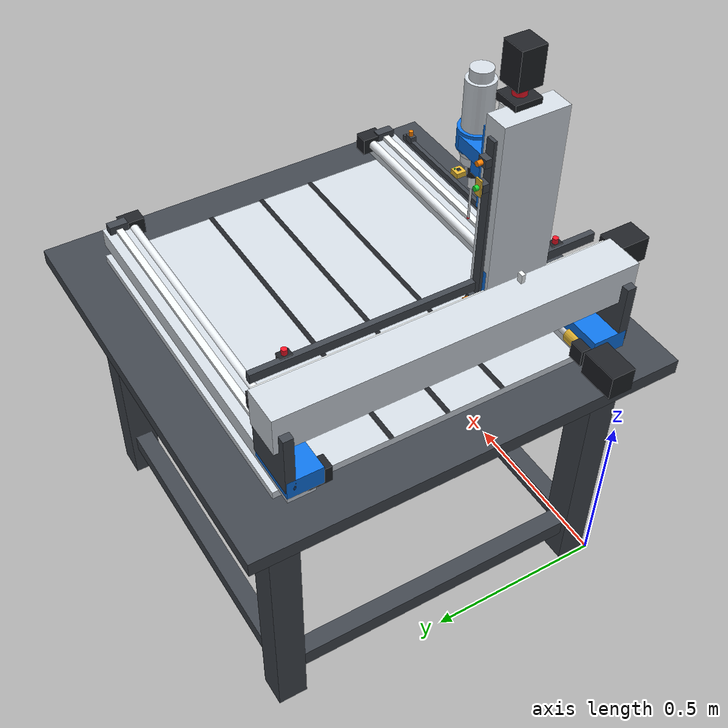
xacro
<?xml version="1.0"?>
<robot xmlns:xacro="http://www.ros.org/wiki/xacro" name="xyz_gantry">

  <xacro:include filename="$(find ros2_xyz_sim)/urdf/xyz_gantry.ros2_control.xacro"/>

  <material name="mat_black">
    <color rgba="0.12 0.13 0.15 1.0"/>
  </material>
  <material name="mat_dark_grey">
    <color rgba="0.25 0.27 0.30 1.0"/>
  </material>
  <material name="mat_silver">
    <color rgba="0.82 0.85 0.88 1.0"/>
  </material>
  <material name="mat_chrome">
    <color rgba="0.94 0.96 0.98 1.0"/>
  </material>
  <material name="mat_blue">
    <color rgba="0.05 0.45 0.90 1.0"/>
  </material>
  <material name="mat_red">
    <color rgba="0.95 0.08 0.15 1.0"/>
  </material>
  <material name="mat_gold">
    <color rgba="0.90 0.72 0.20 1.0"/>
  </material>
  <material name="mat_orange">
    <color rgba="1.0 0.5 0.0 1.0"/>
  </material>
  <material name="mat_green">
    <color rgba="0.1 0.85 0.2 1.0"/>
  </material>

  <link name="world"/>

  <joint name="world_to_base" type="fixed">
    <parent link="world"/>
    <child link="base_link"/>
    <origin xyz="0 0 0" rpy="0 0 0"/>
  </joint>

  <link name="base_link">

    <visual>
      <origin xyz="0.05 0.05 0.37" rpy="0 0 0"/>
      <geometry><box size="0.08 0.08 0.74"/></geometry>
      <material name="mat_dark_grey"/>
    </visual>
    <visual>
      <origin xyz="0.95 0.05 0.37" rpy="0 0 0"/>
      <geometry><box size="0.08 0.08 0.74"/></geometry>
      <material name="mat_dark_grey"/>
    </visual>
    <visual>
      <origin xyz="0.05 0.95 0.37" rpy="0 0 0"/>
      <geometry><box size="0.08 0.08 0.74"/></geometry>
      <material name="mat_dark_grey"/>
    </visual>
    <visual>
      <origin xyz="0.95 0.95 0.37" rpy="0 0 0"/>
      <geometry><box size="0.08 0.08 0.74"/></geometry>
      <material name="mat_dark_grey"/>
    </visual>

    <visual>
      <origin xyz="0.5 0.05 0.12" rpy="0 0 0"/>
      <geometry><box size="0.90 0.05 0.05"/></geometry>
      <material name="mat_dark_grey"/>
    </visual>
    <visual>
      <origin xyz="0.5 0.95 0.12" rpy="0 0 0"/>
      <geometry><box size="0.90 0.05 0.05"/></geometry>
      <material name="mat_dark_grey"/>
    </visual>
    <visual>
      <origin xyz="0.05 0.5 0.12" rpy="0 0 0"/>
      <geometry><box size="0.05 0.85 0.05"/></geometry>
      <material name="mat_dark_grey"/>
    </visual>
    <visual>
      <origin xyz="0.95 0.5 0.12" rpy="0 0 0"/>
      <geometry><box size="0.05 0.85 0.05"/></geometry>
      <material name="mat_dark_grey"/>
    </visual>

    <visual>
      <origin xyz="0.5 0.5 0.76" rpy="0 0 0"/>
      <geometry><box size="1.15 1.15 0.04"/></geometry>
      <material name="mat_dark_grey"/>
    </visual>
    <collision>
      <origin xyz="0.5 0.5 0.38" rpy="0 0 0"/>
      <geometry><box size="1.2 1.2 0.76"/></geometry>
    </collision>
    <inertial>
      <origin xyz="0.5 0.5 0.38" rpy="0 0 0"/>
      <mass value="150.0"/>
      <inertia ixx="25.0" ixy="0" ixz="0" iyy="25.0" iyz="0" izz="35.0"/>
    </inertial>
  </link>
  <gazebo reference="base_link">
    <material>Gazebo/DarkGrey</material>
  </gazebo>

  <link name="base_table_top">
    <visual>
      <origin xyz="0.5 0.5 0.79" rpy="0 0 0"/>
      <geometry><box size="0.90 0.90 0.02"/></geometry>
      <material name="mat_silver"/>
    </visual>

    <visual>
      <origin xyz="0.5 0.35 0.801" rpy="0 0 0"/>
      <geometry><box size="0.90 0.012 0.003"/></geometry>
      <material name="mat_black"/>
    </visual>
    <visual>
      <origin xyz="0.5 0.50 0.801" rpy="0 0 0"/>
      <geometry><box size="0.90 0.012 0.003"/></geometry>
      <material name="mat_black"/>
    </visual>
    <visual>
      <origin xyz="0.5 0.65 0.801" rpy="0 0 0"/>
      <geometry><box size="0.90 0.012 0.003"/></geometry>
      <material name="mat_black"/>
    </visual>
    <!-- Rigid Table Top Physical Collision -->
    <collision>
      <origin xyz="0.5 0.5 0.78" rpy="0 0 0"/>
      <geometry><box size="0.92 0.92 0.04"/></geometry>
    </collision>
    <inertial>
      <origin xyz="0.5 0.5 0.78" rpy="0 0 0"/>
      <mass value="30.0"/>
      <inertia ixx="2.0" ixy="0" ixz="0" iyy="2.0" iyz="0" izz="4.0"/>
    </inertial>
  </link>
  <joint name="base_to_table_top" type="fixed">
    <parent link="base_link"/>
    <child link="base_table_top"/>
    <origin xyz="0 0 0" rpy="0 0 0"/>
  </joint>
  <gazebo reference="base_table_top">
    <material>Gazebo/Grey</material>
    <kp>10000000.0</kp>
    <kd>100.0</kd>
    <minDepth>0.001</minDepth>
    <maxVel>0.0</maxVel>
    <surface>
      <contact>
        <collide_bitmask>0xffff</collide_bitmask>
        <ode>
          <kp>10000000.0</kp>
          <kd>100.0</kd>
          <min_depth>0.001</min_depth>
          <max_vel>0.0</max_vel>
        </ode>
      </contact>
      <friction>
        <ode>
          <mu>0.0</mu>
          <mu2>0.0</mu2>
        </ode>
      </friction>
    </surface>
  </gazebo>

  <link name="x_rail">
    <visual>
      <origin xyz="0.5 0.1 0.825" rpy="0 0 0"/>
      <geometry><box size="0.98 0.07 0.05"/></geometry>
      <material name="mat_silver"/>
    </visual>
    <visual>
      <origin xyz="0.5 0.9 0.825" rpy="0 0 0"/>
      <geometry><box size="0.98 0.07 0.05"/></geometry>
      <material name="mat_silver"/>
    </visual>
    <!-- Mechanical Hard-Stops (Cữ chặn cơ khí 2 đầu trục X) -->
    <visual>
      <origin xyz="0.03 0.1 0.855" rpy="0 0 0"/>
      <geometry><box size="0.025 0.05 0.035"/></geometry>
      <material name="mat_dark_grey"/>
    </visual>
    <visual>
      <origin xyz="0.03 0.9 0.855" rpy="0 0 0"/>
      <geometry><box size="0.025 0.05 0.035"/></geometry>
      <material name="mat_dark_grey"/>
    </visual>
    <visual>
      <origin xyz="0.97 0.1 0.855" rpy="0 0 0"/>
      <geometry><box size="0.025 0.05 0.035"/></geometry>
      <material name="mat_dark_grey"/>
    </visual>
    <visual>
      <origin xyz="0.97 0.9 0.855" rpy="0 0 0"/>
      <geometry><box size="0.025 0.05 0.035"/></geometry>
      <material name="mat_dark_grey"/>
    </visual>
    <collision>
      <origin xyz="0.03 0.1 0.855" rpy="0 0 0"/>
      <geometry><box size="0.025 0.05 0.035"/></geometry>
    </collision>
    <collision>
      <origin xyz="0.03 0.9 0.855" rpy="0 0 0"/>
      <geometry><box size="0.025 0.05 0.035"/></geometry>
    </collision>
    <collision>
      <origin xyz="0.97 0.1 0.855" rpy="0 0 0"/>
      <geometry><box size="0.025 0.05 0.035"/></geometry>
    </collision>
    <collision>
      <origin xyz="0.97 0.9 0.855" rpy="0 0 0"/>
      <geometry><box size="0.025 0.05 0.035"/></geometry>
    </collision>
    <inertial>
      <origin xyz="0.5 0.5 0.825" rpy="0 0 0"/>
      <mass value="20.0"/>
      <inertia ixx="1.5" ixy="0" ixz="0" iyy="1.5" iyz="0" izz="2.5"/>
    </inertial>
  </link>
  <joint name="base_to_x_rail" type="fixed">
    <parent link="base_link"/>
    <child link="x_rail"/>
    <origin xyz="0 0 0" rpy="0 0 0"/>
  </joint>
  <gazebo reference="x_rail">
    <material>Gazebo/Grey</material>
  </gazebo>

  <link name="x_ballscrew">

    <visual>
      <origin xyz="0.5 0.14 0.845" rpy="0 1.570796 0"/>
      <geometry><cylinder radius="0.012" length="0.96"/></geometry>
      <material name="mat_chrome"/>
    </visual>

    <visual>
      <origin xyz="0.5 0.86 0.845" rpy="0 1.570796 0"/>
      <geometry><cylinder radius="0.012" length="0.96"/></geometry>
      <material name="mat_chrome"/>
    </visual>

    <visual>
      <origin xyz="0.5 0.1 0.855" rpy="0 0 0"/>
      <geometry><box size="0.98 0.018 0.012"/></geometry>
      <material name="mat_chrome"/>
    </visual>

    <visual>
      <origin xyz="0.5 0.9 0.855" rpy="0 0 0"/>
      <geometry><box size="0.98 0.018 0.012"/></geometry>
      <material name="mat_chrome"/>
    </visual>
  </link>
  <joint name="x_rail_to_ballscrew" type="fixed">
    <parent link="x_rail"/>
    <child link="x_ballscrew"/>
    <origin xyz="0 0 0" rpy="0 0 0"/>
  </joint>
  <gazebo reference="x_ballscrew">
    <material>Gazebo/Chrome</material>
  </gazebo>

  <link name="x_motor">

    <visual>
      <origin xyz="0.02 0.14 0.845" rpy="0 0 0"/>
      <geometry><box size="0.04 0.06 0.045"/></geometry>
      <material name="mat_black"/>
    </visual>
    <visual>
      <origin xyz="0.98 0.14 0.845" rpy="0 0 0"/>
      <geometry><box size="0.04 0.06 0.045"/></geometry>
      <material name="mat_black"/>
    </visual>

    <visual>
      <origin xyz="0.02 0.86 0.845" rpy="0 0 0"/>
      <geometry><box size="0.04 0.06 0.045"/></geometry>
      <material name="mat_black"/>
    </visual>
    <visual>
      <origin xyz="0.98 0.86 0.845" rpy="0 0 0"/>
      <geometry><box size="0.04 0.06 0.045"/></geometry>
      <material name="mat_black"/>
    </visual>

    <visual>
      <origin xyz="-0.06 0.14 0.845" rpy="0 0 0"/>
      <geometry><box size="0.10 0.065 0.065"/></geometry>
      <material name="mat_black"/>
    </visual>

    <visual>
      <origin xyz="-0.005 0.14 0.845" rpy="0 1.570796 0"/>
      <geometry><cylinder radius="0.016" length="0.025"/></geometry>
      <material name="mat_red"/>
    </visual>
  </link>
  <joint name="x_rail_to_motor" type="fixed">
    <parent link="x_rail"/>
    <child link="x_motor"/>
    <origin xyz="0 0 0" rpy="0 0 0"/>
  </joint>
  <gazebo reference="x_motor">
    <material>Gazebo/FlatBlack</material>
  </gazebo>

  <link name="x_sensor_bracket">
    <visual>
      <origin xyz="0.50 0.055 0.86" rpy="0 0 0"/>
      <geometry><box size="0.86 0.012 0.016"/></geometry>
      <material name="mat_dark_grey"/>
    </visual>
    <visual>
      <origin xyz="0.10 0.055 0.872" rpy="0 0 0"/>
      <geometry><box size="0.024 0.018 0.018"/></geometry>
      <material name="mat_dark_grey"/>
    </visual>
    <visual>
      <origin xyz="0.12 0.055 0.872" rpy="0 0 0"/>
      <geometry><box size="0.024 0.018 0.018"/></geometry>
      <material name="mat_dark_grey"/>
    </visual>
    <visual>
      <origin xyz="0.90 0.055 0.872" rpy="0 0 0"/>
      <geometry><box size="0.024 0.018 0.018"/></geometry>
      <material name="mat_dark_grey"/>
    </visual>
  </link>
  <joint name="x_rail_to_sensor_bracket" type="fixed">
    <parent link="x_rail"/>
    <child link="x_sensor_bracket"/>
    <origin xyz="0 0 0" rpy="0 0 0"/>
  </joint>
  <gazebo reference="x_sensor_bracket">
    <material>Gazebo/DarkGrey</material>
  </gazebo>

  <link name="x_sensors_limit">
    <visual>
      <origin xyz="0.10 0.055 0.886" rpy="0 0 0"/>
      <geometry><cylinder radius="0.006" length="0.018"/></geometry>
      <material name="mat_orange"/>
    </visual>
    <visual>
      <origin xyz="0.90 0.055 0.886" rpy="0 0 0"/>
      <geometry><cylinder radius="0.006" length="0.018"/></geometry>
      <material name="mat_orange"/>
    </visual>
  </link>
  <joint name="x_rail_to_sensors_limit" type="fixed">
    <parent link="x_rail"/>
    <child link="x_sensors_limit"/>
    <origin xyz="0 0 0" rpy="0 0 0"/>
  </joint>
  <gazebo reference="x_sensors_limit">
    <material>Gazebo/Orange</material>
  </gazebo>

  <link name="x_sensors_home">
    <visual>
      <origin xyz="0.12 0.055 0.886" rpy="0 0 0"/>
      <geometry><cylinder radius="0.006" length="0.018"/></geometry>
      <material name="mat_green"/>
    </visual>
  </link>
  <joint name="x_rail_to_sensors_home" type="fixed">
    <parent link="x_rail"/>
    <child link="x_sensors_home"/>
    <origin xyz="0 0 0" rpy="0 0 0"/>
  </joint>
  <gazebo reference="x_sensors_home">
    <material>Gazebo/Green</material>
  </gazebo>

  <joint name="joint_x" type="prismatic">
    <parent link="x_rail"/>
    <child link="x_carriage"/>
    <origin xyz="0.06 0.5 0.85" rpy="0 0 0"/>
    <axis xyz="1 0 0"/>
    <limit lower="0.0" upper="0.8" effort="1000.0" velocity="0.5"/>
    <dynamics damping="4.5" friction="3.5"/>
  </joint>
  <gazebo reference="joint_x">
    <implicitSpringDamper>1</implicitSpringDamper>
    <stopCfm>0.0</stopCfm>
    <stopErp>0.2</stopErp>
  </gazebo>

  <link name="x_carriage">
    <visual>
      <origin xyz="0 -0.40 0.015" rpy="0 0 0"/>
      <geometry><box size="0.14 0.09 0.05"/></geometry>
      <material name="mat_blue"/>
    </visual>
    <visual>
      <origin xyz="0 0.40 0.015" rpy="0 0 0"/>
      <geometry><box size="0.14 0.09 0.05"/></geometry>
      <material name="mat_blue"/>
    </visual>
    <visual>
      <origin xyz="0 -0.395 0.01" rpy="0 0 0"/>
      <geometry><box size="0.01 0.02 0.03"/></geometry>
      <material name="mat_chrome"/>
    </visual>

    <visual>
      <origin xyz="0 -0.36 -0.005" rpy="0 1.570796 0"/>
      <geometry><cylinder radius="0.020" length="0.04"/></geometry>
      <material name="mat_gold"/>
    </visual>
    <visual>
      <origin xyz="0 0.36 -0.005" rpy="0 1.570796 0"/>
      <geometry><cylinder radius="0.020" length="0.04"/></geometry>
      <material name="mat_gold"/>
    </visual>

    <visual>
      <origin xyz="0 -0.435 0.09" rpy="0 0 0"/>
      <geometry><box size="0.14 0.025 0.16"/></geometry>
      <material name="mat_dark_grey"/>
    </visual>
    <visual>
      <origin xyz="0 0.435 0.09" rpy="0 0 0"/>
      <geometry><box size="0.14 0.025 0.16"/></geometry>
      <material name="mat_dark_grey"/>
    </visual>
    <collision>
      <origin xyz="0 0 0.1" rpy="0 0 0"/>
      <geometry><box size="0.16 0.96 0.12"/></geometry>
    </collision>
    <inertial>
      <origin xyz="0 0 0.1" rpy="0 0 0"/>
      <mass value="25.0"/>
      <inertia ixx="2.0" ixy="0" ixz="0" iyy="0.5" iyz="0" izz="2.2"/>
    </inertial>
  </link>
  <gazebo reference="x_carriage">
    <material>Gazebo/Blue</material>
  </gazebo>

  <link name="y_beam">
    <visual>
      <origin xyz="0 0 0.17" rpy="0 0 0"/>
      <geometry><box size="0.10 0.92 0.10"/></geometry>
      <material name="mat_silver"/>
    </visual>
    <!-- Mechanical Hard-Stops (Cữ chặn cơ khí 2 đầu trục Y) -->
    <visual>
      <origin xyz="0 -0.44 0.17" rpy="0 0 0"/>
      <geometry><box size="0.09 0.025 0.08"/></geometry>
      <material name="mat_dark_grey"/>
    </visual>
    <visual>
      <origin xyz="0 0.44 0.17" rpy="0 0 0"/>
      <geometry><box size="0.09 0.025 0.08"/></geometry>
      <material name="mat_dark_grey"/>
    </visual>
    <collision>
      <origin xyz="0 -0.44 0.17" rpy="0 0 0"/>
      <geometry><box size="0.09 0.025 0.08"/></geometry>
    </collision>
    <collision>
      <origin xyz="0 0.44 0.17" rpy="0 0 0"/>
      <geometry><box size="0.09 0.025 0.08"/></geometry>
    </collision>
  </link>
  <joint name="x_carriage_to_y_beam" type="fixed">
    <parent link="x_carriage"/>
    <child link="y_beam"/>
    <origin xyz="0 0 0" rpy="0 0 0"/>
  </joint>
  <gazebo reference="y_beam">
    <material>Gazebo/Grey</material>
  </gazebo>

  <link name="y_ballscrew">

    <visual>
      <origin xyz="0.055 0 0.17" rpy="1.570796 0 0"/>
      <geometry><cylinder radius="0.012" length="0.90"/></geometry>
      <material name="mat_chrome"/>
    </visual>

    <visual>
      <origin xyz="0.055 0 0.205" rpy="0 0 0"/>
      <geometry><box size="0.012 0.90 0.012"/></geometry>
      <material name="mat_chrome"/>
    </visual>

    <visual>
      <origin xyz="0.055 0 0.135" rpy="0 0 0"/>
      <geometry><box size="0.012 0.90 0.012"/></geometry>
      <material name="mat_chrome"/>
    </visual>
  </link>
  <joint name="x_carriage_to_y_ballscrew" type="fixed">
    <parent link="x_carriage"/>
    <child link="y_ballscrew"/>
    <origin xyz="0 0 0" rpy="0 0 0"/>
  </joint>
  <gazebo reference="y_ballscrew">
    <material>Gazebo/Chrome</material>
  </gazebo>

  <link name="y_motor">

    <visual>
      <origin xyz="0.055 -0.44 0.17" rpy="0 0 0"/>
      <geometry><box size="0.035 0.03 0.045"/></geometry>
      <material name="mat_black"/>
    </visual>
    <visual>
      <origin xyz="0.055 0.44 0.17" rpy="0 0 0"/>
      <geometry><box size="0.035 0.03 0.045"/></geometry>
      <material name="mat_black"/>
    </visual>

    <visual>
      <origin xyz="0.055 -0.51 0.17" rpy="0 0 0"/>
      <geometry><box size="0.065 0.09 0.065"/></geometry>
      <material name="mat_black"/>
    </visual>

    <visual>
      <origin xyz="0.055 -0.46 0.17" rpy="1.570796 0 0"/>
      <geometry><cylinder radius="0.016" length="0.025"/></geometry>
      <material name="mat_red"/>
    </visual>
  </link>
  <joint name="x_carriage_to_y_motor" type="fixed">
    <parent link="x_carriage"/>
    <child link="y_motor"/>
    <origin xyz="0 0 0" rpy="0 0 0"/>
  </joint>

  <!-- Y-Axis Heavy Sensor Bracket (Mounted Prominently on Front/Top of Crossbeam) -->
  <link name="y_sensor_bracket">
    <visual>
      <origin xyz="0.088 0 0.21" rpy="0 0 0"/>
      <geometry><box size="0.015 0.88 0.024"/></geometry>
      <material name="mat_dark_grey"/>
    </visual>
    <!-- Sensor U-slot housing 1: Limit- (Y = -0.34m) -->
    <visual>
      <origin xyz="0.098 -0.34 0.21" rpy="0 0 0"/>
      <geometry><box size="0.022 0.030 0.028"/></geometry>
      <material name="mat_black"/>
    </visual>
    <!-- Sensor U-slot housing 2: Home ORG (Y = -0.20m) -->
    <visual>
      <origin xyz="0.098 -0.20 0.21" rpy="0 0 0"/>
      <geometry><box size="0.022 0.030 0.028"/></geometry>
      <material name="mat_black"/>
    </visual>
    <!-- Sensor U-slot housing 3: Limit+ (Y = +0.35m) -->
    <visual>
      <origin xyz="0.098 0.35 0.21" rpy="0 0 0"/>
      <geometry><box size="0.022 0.030 0.028"/></geometry>
      <material name="mat_black"/>
    </visual>
  </link>
  <joint name="x_carriage_to_y_sensor_bracket" type="fixed">
    <parent link="x_carriage"/>
    <child link="y_sensor_bracket"/>
    <origin xyz="0 0 0" rpy="0 0 0"/>
  </joint>
  <gazebo reference="y_sensor_bracket">
    <material>Gazebo/DarkGrey</material>
  </gazebo>

  <!-- Y-Axis Limit Sensors (Red LED Optics) -->
  <link name="y_sensors_limit">
    <visual>
      <origin xyz="0.098 -0.34 0.23" rpy="0 0 0"/>
      <geometry><cylinder radius="0.007" length="0.016"/></geometry>
      <material name="mat_red"/>
    </visual>
    <visual>
      <origin xyz="0.098 0.35 0.23" rpy="0 0 0"/>
      <geometry><cylinder radius="0.007" length="0.016"/></geometry>
      <material name="mat_red"/>
    </visual>
  </link>
  <joint name="x_carriage_to_y_sensors_limit" type="fixed">
    <parent link="x_carriage"/>
    <child link="y_sensors_limit"/>
    <origin xyz="0 0 0" rpy="0 0 0"/>
  </joint>
  <gazebo reference="y_sensors_limit">
    <material>Gazebo/RedBright</material>
  </gazebo>

  <!-- Y-Axis Home ORG Sensor (Bright Gold / Green LED Optics) -->
  <link name="y_sensors_home">
    <visual>
      <origin xyz="0.098 -0.20 0.23" rpy="0 0 0"/>
      <geometry><cylinder radius="0.007" length="0.016"/></geometry>
      <material name="mat_green"/>
    </visual>
  </link>
  <joint name="x_carriage_to_y_sensors_home" type="fixed">
    <parent link="x_carriage"/>
    <child link="y_sensors_home"/>
    <origin xyz="0 0 0" rpy="0 0 0"/>
  </joint>
  <gazebo reference="y_sensors_home">
    <material>Gazebo/Green</material>
  </gazebo>

  <joint name="joint_y" type="prismatic">
    <parent link="x_carriage"/>
    <child link="y_carriage"/>
    <origin xyz="0 -0.20 0.22" rpy="0 0 0"/>
    <axis xyz="0 1 0"/>
    <limit lower="0.0" upper="0.70" effort="1000.0" velocity="0.5"/>
    <dynamics damping="3.0" friction="2.0"/>
  </joint>
  <gazebo reference="joint_y">
    <implicitSpringDamper>1</implicitSpringDamper>
    <stopCfm>0.0</stopCfm>
    <stopErp>0.2</stopErp>
  </gazebo>

  <link name="y_carriage">
    <visual>
      <origin xyz="0.07 0 -0.05" rpy="0 0 0"/>
      <geometry><box size="0.025 0.16 0.18"/></geometry>
      <material name="mat_blue"/>
    </visual>
    <!-- Y Optical Sensor Interrupter Flag (Gold Blade) -->
    <visual>
      <origin xyz="0.098 0 -0.01" rpy="0 0 0"/>
      <geometry><box size="0.005 0.035 0.035"/></geometry>
      <material name="mat_gold"/>
    </visual>
    <visual>
      <origin xyz="0.035 0 0.01" rpy="0 0 0"/>
      <geometry><box size="0.015 0.01 0.025"/></geometry>
      <material name="mat_chrome"/>
    </visual>

    <visual>
      <origin xyz="0.055 0 -0.05" rpy="1.570796 0 0"/>
      <geometry><cylinder radius="0.020" length="0.035"/></geometry>
      <material name="mat_gold"/>
    </visual>
    <collision>
      <origin xyz="0 0 0.15" rpy="0 0 0"/>
      <geometry><box size="0.18 0.16 0.4"/></geometry>
    </collision>
    <inertial>
      <origin xyz="0 0 0.15" rpy="0 0 0"/>
      <mass value="12.0"/>
      <inertia ixx="0.3" ixy="0" ixz="0" iyy="0.3" iyz="0" izz="0.15"/>
    </inertial>
  </link>
  <gazebo reference="y_carriage">
    <material>Gazebo/Blue</material>
  </gazebo>

  <link name="z_tower">
    <visual>
      <origin xyz="0.08 0 0.15" rpy="0 0 0"/>
      <geometry><box size="0.06 0.16 0.52"/></geometry>
      <material name="mat_silver"/>
    </visual>
    <!-- Mechanical Hard-Stops (Cữ chặn cơ khí 2 đầu trục Z) -->
    <visual>
      <origin xyz="0.115 0 0.38" rpy="0 0 0"/>
      <geometry><box size="0.04 0.08 0.02"/></geometry>
      <material name="mat_dark_grey"/>
    </visual>
    <visual>
      <origin xyz="0.115 0 -0.08" rpy="0 0 0"/>
      <geometry><box size="0.04 0.08 0.02"/></geometry>
      <material name="mat_dark_grey"/>
    </visual>
    <collision>
      <origin xyz="0.115 0 0.38" rpy="0 0 0"/>
      <geometry><box size="0.04 0.08 0.02"/></geometry>
    </collision>
    <collision>
      <origin xyz="0.115 0 -0.08" rpy="0 0 0"/>
      <geometry><box size="0.04 0.08 0.02"/></geometry>
    </collision>
  </link>
  <joint name="y_carriage_to_z_tower" type="fixed">
    <parent link="y_carriage"/>
    <child link="z_tower"/>
    <origin xyz="0 0 0" rpy="0 0 0"/>
  </joint>
  <gazebo reference="z_tower">
    <material>Gazebo/Grey</material>
  </gazebo>

  <link name="z_ballscrew">
    <visual>
      <origin xyz="0.115 0 0.15" rpy="0 0 0"/>
      <geometry><cylinder radius="0.012" length="0.48"/></geometry>
      <material name="mat_chrome"/>
    </visual>
    <visual>
      <origin xyz="0.115 -0.05 0.15" rpy="0 0 0"/>
      <geometry><box size="0.012 0.016 0.48"/></geometry>
      <material name="mat_chrome"/>
    </visual>
    <visual>
      <origin xyz="0.115 0.05 0.15" rpy="0 0 0"/>
      <geometry><box size="0.012 0.016 0.48"/></geometry>
      <material name="mat_chrome"/>
    </visual>
    <visual>
      <origin xyz="0.115 0 -0.09" rpy="0 0 0"/>
      <geometry><box size="0.035 0.07 0.035"/></geometry>
      <material name="mat_chrome"/>
    </visual>
    <visual>
      <origin xyz="0.115 0 0.39" rpy="0 0 0"/>
      <geometry><box size="0.035 0.07 0.035"/></geometry>
      <material name="mat_chrome"/>
    </visual>
  </link>
  <joint name="y_carriage_to_z_ballscrew" type="fixed">
    <parent link="y_carriage"/>
    <child link="z_ballscrew"/>
    <origin xyz="0 0 0" rpy="0 0 0"/>
  </joint>
  <gazebo reference="z_ballscrew">
    <material>Gazebo/Chrome</material>
  </gazebo>

  <link name="z_motor">
    <visual>
      <origin xyz="0.115 0 0.415" rpy="0 0 0"/>
      <geometry><box size="0.065 0.065 0.02"/></geometry>
      <material name="mat_black"/>
    </visual>
    <visual>
      <origin xyz="0.115 0 0.435" rpy="0 0 0"/>
      <geometry><cylinder radius="0.016" length="0.025"/></geometry>
      <material name="mat_red"/>
    </visual>
    <visual>
      <origin xyz="0.115 0 0.495" rpy="0 0 0"/>
      <geometry><box size="0.06 0.06 0.09"/></geometry>
      <material name="mat_black"/>
    </visual>
  </link>
  <joint name="y_carriage_to_z_motor" type="fixed">
    <parent link="y_carriage"/>
    <child link="z_motor"/>
    <origin xyz="0 0 0" rpy="0 0 0"/>
  </joint>
  <gazebo reference="z_motor">
    <material>Gazebo/FlatBlack</material>
  </gazebo>

  <link name="z_sensor_bracket">
    <visual>
      <origin xyz="0.08 0.084 0.15" rpy="0 0 0"/>
      <geometry><box size="0.024 0.008 0.44"/></geometry>
      <material name="mat_dark_grey"/>
    </visual>
    <visual>
      <origin xyz="0.08 0.096 -0.037" rpy="0 0 0"/>
      <geometry><box size="0.024 0.016 0.02"/></geometry>
      <material name="mat_dark_grey"/>
    </visual>
    <visual>
      <origin xyz="0.08 0.096 0.263" rpy="0 0 0"/>
      <geometry><box size="0.024 0.016 0.02"/></geometry>
      <material name="mat_dark_grey"/>
    </visual>
    <visual>
      <origin xyz="0.08 0.096 0.323" rpy="0 0 0"/>
      <geometry><box size="0.024 0.016 0.02"/></geometry>
      <material name="mat_dark_grey"/>
    </visual>
  </link>
  <joint name="y_carriage_to_z_sensor_bracket" type="fixed">
    <parent link="y_carriage"/>
    <child link="z_sensor_bracket"/>
    <origin xyz="0 0 0" rpy="0 0 0"/>
  </joint>
  <gazebo reference="z_sensor_bracket">
    <material>Gazebo/DarkGrey</material>
  </gazebo>

  <link name="z_sensors_limit">
    <!-- Cảm biến Limit- (Cam dưới) tại đáy phôi Z=-100mm -->
    <visual>
      <origin xyz="0.08 0.108 -0.037" rpy="1.570796 0 0"/>
      <geometry><cylinder radius="0.006" length="0.018"/></geometry>
      <material name="mat_orange"/>
    </visual>
    <!-- Cảm biến Limit+ (Cam trên) tại đỉnh Z=+260mm -->
    <visual>
      <origin xyz="0.08 0.108 0.323" rpy="1.570796 0 0"/>
      <geometry><cylinder radius="0.006" length="0.018"/></geometry>
      <material name="mat_orange"/>
    </visual>
  </link>
  <joint name="y_carriage_to_z_sensors_limit" type="fixed">
    <parent link="y_carriage"/>
    <child link="z_sensors_limit"/>
    <origin xyz="0 0 0" rpy="0 0 0"/>
  </joint>
  <gazebo reference="z_sensors_limit">
    <material>Gazebo/Orange</material>
  </gazebo>

  <link name="z_sensors_home">
    <!-- Cảm biến Home ORG (Xanh) ở độ cao +200mm (cao hơn mặt phôi 20cm) -->
    <visual>
      <origin xyz="0.08 0.108 0.263" rpy="1.570796 0 0"/>
      <geometry><cylinder radius="0.006" length="0.018"/></geometry>
      <material name="mat_green"/>
    </visual>
  </link>
  <joint name="y_carriage_to_z_sensors_home" type="fixed">
    <parent link="y_carriage"/>
    <child link="z_sensors_home"/>
    <origin xyz="0 0 0" rpy="0 0 0"/>
  </joint>
  <gazebo reference="z_sensors_home">
    <material>Gazebo/Green</material>
  </gazebo>

  <joint name="joint_z" type="prismatic">
    <parent link="y_carriage"/>
    <child link="z_tool_flange"/>
    <origin xyz="0.12 0 0.263" rpy="0 0 0"/>
    <axis xyz="0 0 1"/>
    <limit lower="-0.30" upper="0.06" effort="1000.0" velocity="0.5"/>
    <dynamics damping="2.5" friction="1.5"/>
  </joint>
  <gazebo reference="joint_z">
    <implicitSpringDamper>1</implicitSpringDamper>
    <stopCfm>0.0</stopCfm>
    <stopErp>0.2</stopErp>
  </gazebo>

  <link name="z_tool_flange">
    <visual>
      <origin xyz="0.005 0 0" rpy="0 0 0"/>
      <geometry><box size="0.02 0.13 0.20"/></geometry>
      <material name="mat_blue"/>
    </visual>
    <visual>
      <origin xyz="-0.04 0.088 0" rpy="0 0 0"/>
      <geometry><box size="0.018 0.024 0.01"/></geometry>
      <material name="mat_silver"/>
    </visual>
    <visual>
      <origin xyz="-0.04 0.106 0" rpy="0 0 0"/>
      <geometry><box size="0.018 0.004 0.04"/></geometry>
      <material name="mat_gold"/>
    </visual>
    <visual>
      <origin xyz="0 0 0" rpy="0 0 0"/>
      <geometry><cylinder radius="0.018" length="0.04"/></geometry>
      <material name="mat_blue"/>
    </visual>
    <visual>
      <origin xyz="0.065 0 -0.01" rpy="0 0 0"/>
      <geometry><box size="0.11 0.09 0.035"/></geometry>
      <material name="mat_blue"/>
    </visual>
    <visual>
      <origin xyz="0.05 0 -0.05" rpy="0 0 0"/>
      <geometry><box size="0.08 0.06 0.045"/></geometry>
      <material name="mat_blue"/>
    </visual>
    <visual>
      <origin xyz="0.12 0 -0.01" rpy="0 0 0"/>
      <geometry><cylinder radius="0.042" length="0.05"/></geometry>
      <material name="mat_blue"/>
    </visual>
    <visual>
      <origin xyz="0.155 0 -0.01" rpy="0 0 0"/>
      <geometry><box size="0.025 0.02 0.04"/></geometry>
      <material name="mat_blue"/>
    </visual>
    <collision>
      <origin xyz="0.06 0 -0.02" rpy="0 0 0"/>
      <geometry><box size="0.14 0.10 0.18"/></geometry>
    </collision>
    <collision name="probe_tip_collision">
      <origin xyz="0.12 0 -0.23" rpy="0 0 0"/>
      <geometry><sphere radius="0.003"/></geometry>
    </collision>
    <inertial>
      <origin xyz="0.06 0 -0.02" rpy="0 0 0"/>
      <mass value="4.0"/>
      <inertia ixx="0.05" ixy="0" ixz="0" iyy="0.05" iyz="0" izz="0.02"/>
    </inertial>
  </link>
  <gazebo reference="z_tool_flange">
    <material>Gazebo/Blue</material>
    <kp>10000000.0</kp>
    <kd>100.0</kd>
    <minDepth>0.001</minDepth>
    <maxVel>0.0</maxVel>
    <surface>
      <contact>
        <collide_bitmask>0xffff</collide_bitmask>
        <ode>
          <kp>10000000.0</kp>
          <kd>100.0</kd>
          <min_depth>0.001</min_depth>
          <max_vel>0.0</max_vel>
        </ode>
      </contact>
      <friction>
        <ode>
          <mu>0.0</mu>
          <mu2>0.0</mu2>
        </ode>
      </friction>
    </surface>
    <sensor type="contact" name="probe_tip_contact">
      <always_on>true</always_on>
      <update_rate>1000.0</update_rate>
      <contact>
        <collision>probe_tip_collision</collision>
      </contact>
      <plugin name="probe_contact_plugin" filename="libgazebo_ros_contact_sensor.so">
      </plugin>
    </sensor>
  </gazebo>

  <link name="z_spindle">
    <visual>
      <origin xyz="0 0 0.04" rpy="0 0 0"/>
      <geometry><cylinder radius="0.034" length="0.18"/></geometry>
      <material name="mat_silver"/>
    </visual>
    <visual>
      <origin xyz="0 0 0.14" rpy="0 0 0"/>
      <geometry><cylinder radius="0.026" length="0.03"/></geometry>
      <material name="mat_silver"/>
    </visual>
    <visual>
      <origin xyz="0 0 -0.06" rpy="0 0 0"/>
      <geometry><cylinder radius="0.030" length="0.025"/></geometry>
      <material name="mat_silver"/>
    </visual>
  </link>
  <joint name="z_tool_to_spindle" type="fixed">
    <parent link="z_tool_flange"/>
    <child link="z_spindle"/>
    <origin xyz="0.12 0 0" rpy="0 0 0"/>
  </joint>
  <gazebo reference="z_spindle">
    <material>Gazebo/Grey</material>
  </gazebo>

  <link name="z_collet">
    <!-- ER16 Precision Collet Chuck Main Nut -->
    <visual>
      <origin xyz="0 0 -0.09" rpy="0 0 0"/>
      <geometry><cylinder radius="0.018" length="0.035"/></geometry>
      <material name="mat_black"/>
    </visual>
    <!-- ER Collet High-Contrast Spanner Slots (X & Y Axis Notches) -->
    <visual>
      <origin xyz="0 0 -0.09" rpy="0 0 0"/>
      <geometry><box size="0.038 0.008 0.020"/></geometry>
      <material name="mat_silver"/>
    </visual>
    <visual>
      <origin xyz="0 0 -0.09" rpy="0 0 0"/>
      <geometry><box size="0.008 0.038 0.020"/></geometry>
      <material name="mat_silver"/>
    </visual>
  </link>
  <joint name="z_tool_to_collet" type="fixed">
    <parent link="z_tool_flange"/>
    <child link="z_collet"/>
    <origin xyz="0.12 0 0" rpy="0 0 0"/>
  </joint>
  <gazebo reference="z_collet">
    <material>Gazebo/FlatBlack</material>
  </gazebo>

  <link name="z_probe_body">
    <!-- Solid Tungsten Carbide Shank -->
    <visual>
      <origin xyz="0 0 -0.125" rpy="0 0 0"/>
      <geometry><cylinder radius="0.008" length="0.035"/></geometry>
      <material name="mat_chrome"/>
    </visual>
    <!-- 2-Flute Precision Endmill Cutter Core -->
    <visual>
      <origin xyz="0 0 -0.185" rpy="0 0 0"/>
      <geometry><cylinder radius="0.0022" length="0.085"/></geometry>
      <material name="mat_chrome"/>
    </visual>
    <!-- High-Contrast Helical Flute Edges (Visible dynamic spinning) -->
    <visual>
      <origin xyz="0 0 -0.185" rpy="0 0 0.785398"/>
      <geometry><box size="0.0055 0.0016 0.085"/></geometry>
      <material name="mat_silver"/>
    </visual>
    <visual>
      <origin xyz="0 0 -0.185" rpy="0 0 -0.785398"/>
      <geometry><box size="0.0016 0.0055 0.085"/></geometry>
      <material name="mat_gold"/>
    </visual>
  </link>
  <joint name="z_tool_to_probe" type="fixed">
    <parent link="z_tool_flange"/>
    <child link="z_probe_body"/>
    <origin xyz="0.12 0 0" rpy="0 0 0"/>
  </joint>
  <gazebo reference="z_probe_body">
    <material>Gazebo/Chrome</material>
  </gazebo>

  <link name="z_ruby_tip">
    <!-- Sharp Precision Cutter Tip / Ruby Point -->
    <visual>
      <origin xyz="0 0 -0.23" rpy="0 0 0"/>
      <geometry><sphere radius="0.003"/></geometry>
      <material name="mat_red"/>
    </visual>
  </link>
  <joint name="z_tool_to_ruby" type="fixed">
    <parent link="z_tool_flange"/>
    <child link="z_ruby_tip"/>
    <origin xyz="0.12 0 0" rpy="0 0 0"/>
  </joint>
  <gazebo reference="z_ruby_tip">
    <material>Gazebo/Red</material>
  </gazebo>

  <!-- 8. CỤM CẢM BIẾN GIA TỐC RUNG ĐẦU DAO (TOOL VIBRATION SENSOR @ 1000 Hz) -->
  <!-- Đề tài: TS. Nguyễn Hoàng Giáp - SVTH: Phan Anh Đức (2210806)         -->
  <link name="tool_imu_sensor_link">
    <!-- Vỏ bọc nhôm Anodized vàng bảo vệ cảm biến gia tốc MEMS 3 trục gắn đầu dao -->
    <visual>
      <origin xyz="0 0 0" rpy="0 0 0"/>
      <geometry><box size="0.024 0.024 0.012"/></geometry>
      <material name="mat_gold"/>
    </visual>
    <!-- Chip cảm biến gia tốc vi cơ điện tử MEMS -->
    <visual>
      <origin xyz="0 0 0.007" rpy="0 0 0"/>
      <geometry><box size="0.008 0.008 0.002"/></geometry>
      <material name="mat_black"/>
    </visual>
    <!-- Đèn LED báo trạng thái cảm biến hoạt động thời gian thực -->
    <visual>
      <origin xyz="0.006 0.006 0.007" rpy="0 0 0"/>
      <geometry><cylinder radius="0.0015" length="0.002"/></geometry>
      <material name="mat_green"/>
    </visual>
    <collision>
      <origin xyz="0 0 0" rpy="0 0 0"/>
      <geometry><box size="0.024 0.024 0.012"/></geometry>
    </collision>
    <inertial>
      <origin xyz="0 0 0" rpy="0 0 0"/>
      <mass value="0.02"/>
      <inertia ixx="0.000005" ixy="0" ixz="0" iyy="0.000005" iyz="0" izz="0.000005"/>
    </inertial>
  </link>

  <!-- Khớp cố định gá cảm biến gia tốc trực tiếp tại đầu dao phay / Spindle Flange -->
  <joint name="z_tool_to_imu_sensor" type="fixed">
    <parent link="z_tool_flange"/>
    <child link="tool_imu_sensor_link"/>
    <origin xyz="0.12 0.038 -0.09" rpy="0 0 0"/>
  </joint>

  <!-- Plugin cảm biến gia tốc quán tính IMU Gazebo xuất topic /tool_imu/data @ 1000 Hz -->
  <gazebo reference="tool_imu_sensor_link">
    <material>Gazebo/Gold</material>
    <sensor name="tool_imu_sensor" type="imu">
      <always_on>true</always_on>
      <update_rate>1000.0</update_rate>
      <visualize>true</visualize>
      <topic>__default_topic__</topic>
      <plugin name="tool_imu_plugin" filename="libgazebo_ros_imu_sensor.so">
        <ros>
          <namespace>/</namespace>
          <remapping>~/out:=tool_imu/data</remapping>
        </ros>
        <initial_orientation_as_reference>false</initial_orientation_as_reference>
      </plugin>
      <imu>
        <linear_acceleration>
          <x>
            <noise type="gaussian">
              <mean>0.0</mean>
              <stddev>0.015</stddev>
            </noise>
          </x>
          <y>
            <noise type="gaussian">
              <mean>0.0</mean>
              <stddev>0.015</stddev>
            </noise>
          </y>
          <z>
            <noise type="gaussian">
              <mean>0.0</mean>
              <stddev>0.015</stddev>
            </noise>
          </z>
        </linear_acceleration>
        <angular_velocity>
          <x>
            <noise type="gaussian">
              <mean>0.0</mean>
              <stddev>0.001</stddev>
            </noise>
          </x>
          <y>
            <noise type="gaussian">
              <mean>0.0</mean>
              <stddev>0.001</stddev>
            </noise>
          </y>
          <z>
            <noise type="gaussian">
              <mean>0.0</mean>
              <stddev>0.001</stddev>
            </noise>
          </z>
        </angular_velocity>
      </imu>
    </sensor>
  </gazebo>

</robot>
